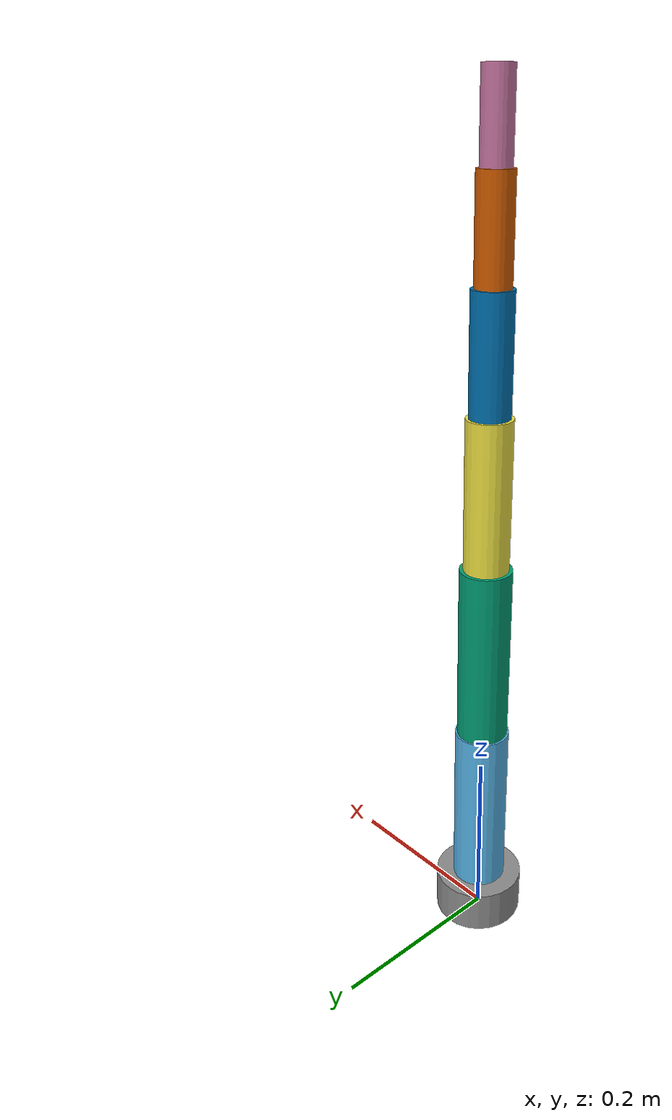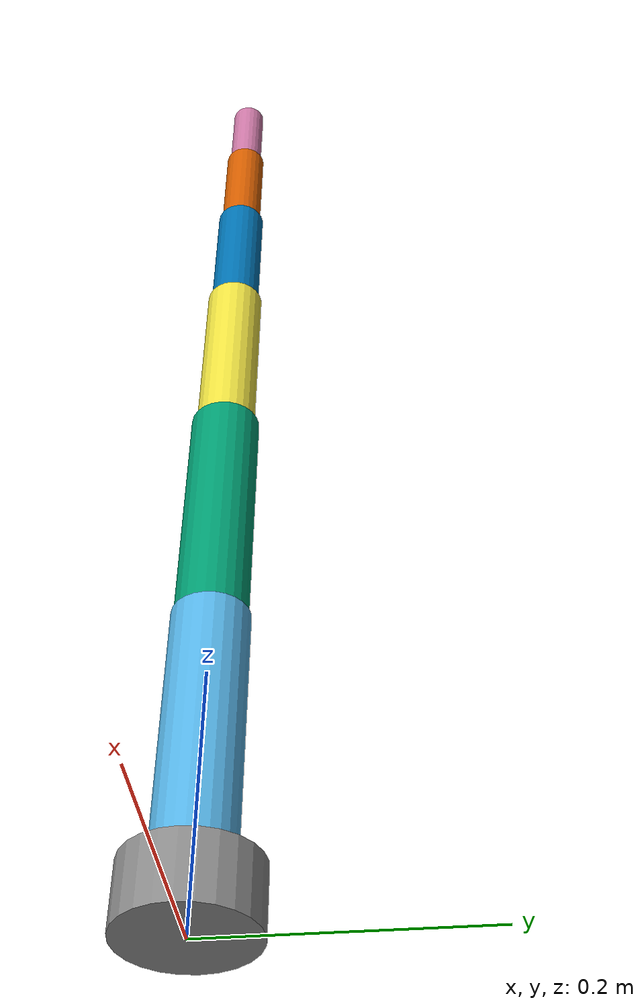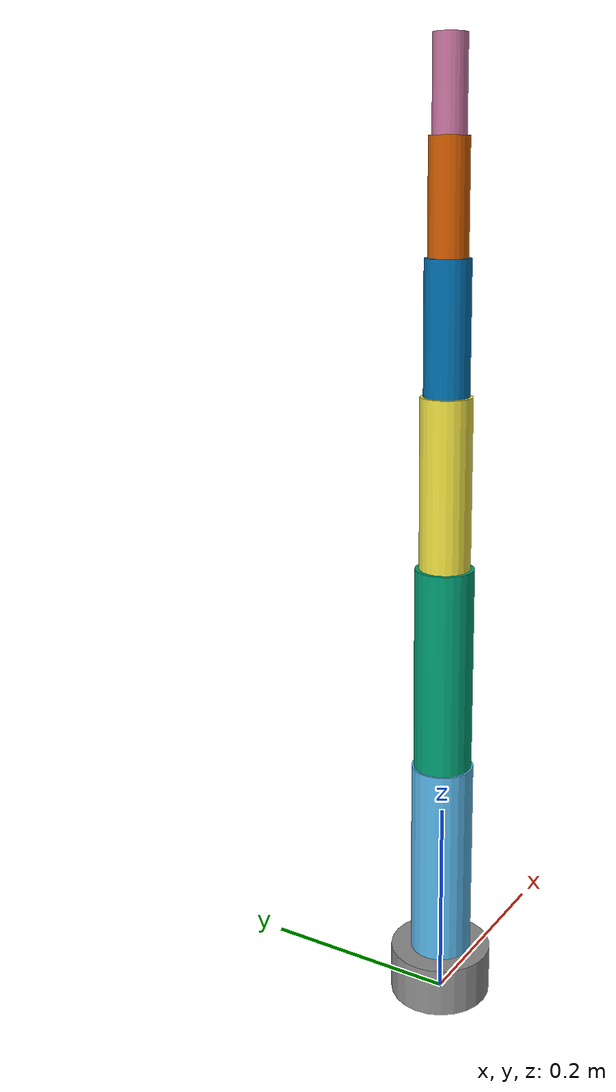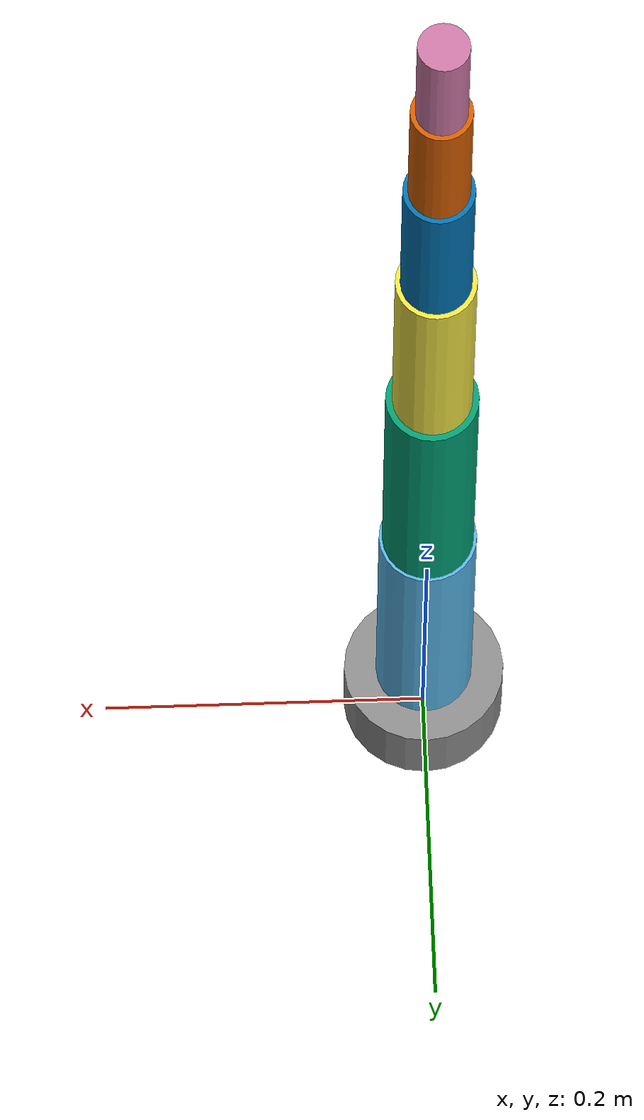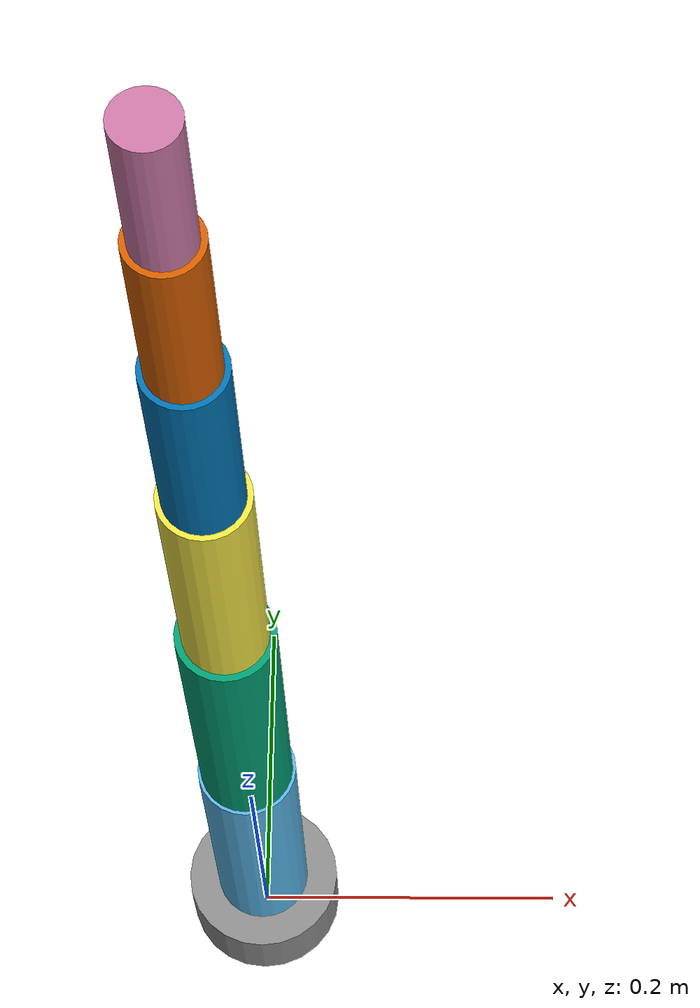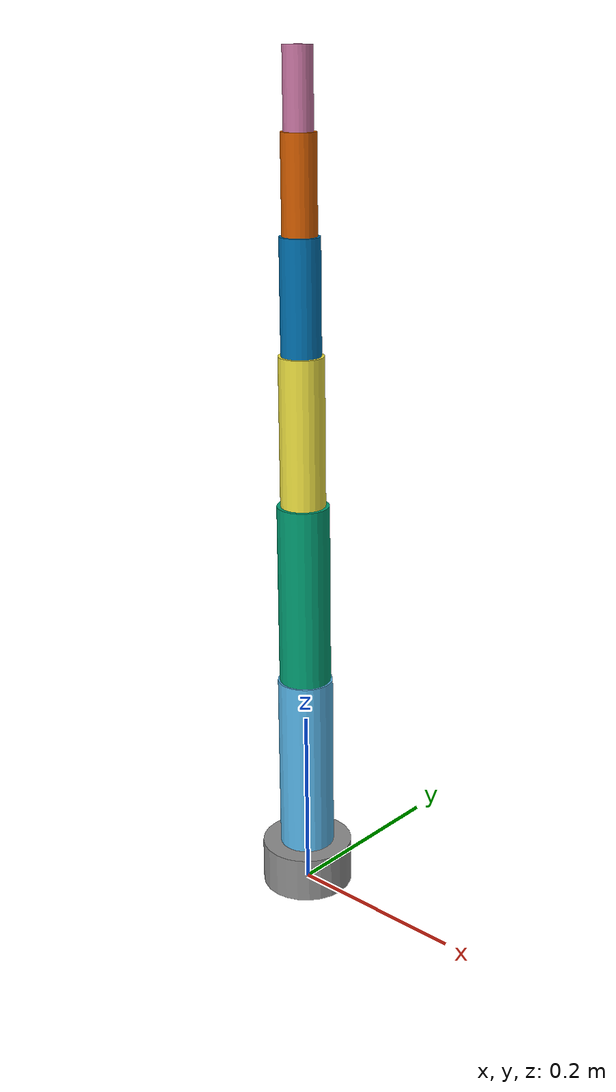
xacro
<?xml version="1.0"?>
<robot name="phase6_arm" xmlns:xacro="http://www.ros.org/wiki/xacro">

  <xacro:property name="pi" value="3.1415926535897931"/>

  <link name="base_link">
    <inertial>
      <origin xyz="0 0 0.025" rpy="0 0 0"/>
      <mass value="2.0"/>
      <inertia ixx="0.01" ixy="0" ixz="0" iyy="0.01" iyz="0" izz="0.01"/>
    </inertial>
    <visual>
      <origin xyz="0 0 0.025" rpy="0 0 0"/>
      <geometry>
        <cylinder radius="0.05" length="0.05"/>
      </geometry>
      <material name="base_gray">
        <color rgba="0.55 0.55 0.55 1.0"/>
      </material>
    </visual>
    <collision>
      <origin xyz="0 0 0.025" rpy="0 0 0"/>
      <geometry>
        <cylinder radius="0.05" length="0.05"/>
      </geometry>
    </collision>
  </link>

  <link name="link1">
    <inertial><origin xyz="0 0 0.10" rpy="0 0 0"/><mass value="1.0"/><inertia ixx="0.005" ixy="0" ixz="0" iyy="0.005" iyz="0" izz="0.002"/></inertial>
    <visual><origin xyz="0 0 0.10" rpy="0 0 0"/><geometry><cylinder radius="0.03" length="0.20"/></geometry></visual>
    <collision><origin xyz="0 0 0.10" rpy="0 0 0"/><geometry><cylinder radius="0.03" length="0.20"/></geometry></collision>
  </link>
  <joint name="joint1" type="revolute">
    <parent link="base_link"/>
    <child link="link1"/>
    <origin xyz="0 0 0.05" rpy="0 0 0"/>
    <axis xyz="0 0 1"/>
    <limit lower="-${pi}" upper="${pi}" effort="20" velocity="2.0"/>
  </joint>

  <link name="link2">
    <inertial><origin xyz="0 0 0.10" rpy="0 0 0"/><mass value="0.9"/><inertia ixx="0.004" ixy="0" ixz="0" iyy="0.004" iyz="0" izz="0.002"/></inertial>
    <visual><origin xyz="0 0 0.10" rpy="0 0 0"/><geometry><cylinder radius="0.028" length="0.20"/></geometry></visual>
    <collision><origin xyz="0 0 0.10" rpy="0 0 0"/><geometry><cylinder radius="0.028" length="0.20"/></geometry></collision>
  </link>
  <joint name="joint2" type="revolute">
    <parent link="link1"/>
    <child link="link2"/>
    <origin xyz="0 0 0.20" rpy="0 0 0"/>
    <axis xyz="0 1 0"/>
    <limit lower="-2.5" upper="2.5" effort="20" velocity="2.0"/>
  </joint>

  <link name="link3">
    <inertial><origin xyz="0 0 0.08" rpy="0 0 0"/><mass value="0.7"/><inertia ixx="0.003" ixy="0" ixz="0" iyy="0.003" iyz="0" izz="0.001"/></inertial>
    <visual><origin xyz="0 0 0.08" rpy="0 0 0"/><geometry><cylinder radius="0.024" length="0.16"/></geometry></visual>
    <collision><origin xyz="0 0 0.08" rpy="0 0 0"/><geometry><cylinder radius="0.024" length="0.16"/></geometry></collision>
  </link>
  <joint name="joint3" type="revolute">
    <parent link="link2"/>
    <child link="link3"/>
    <origin xyz="0 0 0.20" rpy="0 0 0"/>
    <axis xyz="0 1 0"/>
    <limit lower="-2.5" upper="2.5" effort="15" velocity="2.0"/>
  </joint>

  <link name="link4">
    <inertial><origin xyz="0 0 0.06" rpy="0 0 0"/><mass value="0.5"/><inertia ixx="0.002" ixy="0" ixz="0" iyy="0.002" iyz="0" izz="0.001"/></inertial>
    <visual><origin xyz="0 0 0.06" rpy="0 0 0"/><geometry><cylinder radius="0.021" length="0.12"/></geometry></visual>
    <collision><origin xyz="0 0 0.06" rpy="0 0 0"/><geometry><cylinder radius="0.021" length="0.12"/></geometry></collision>
  </link>
  <joint name="joint4" type="revolute">
    <parent link="link3"/>
    <child link="link4"/>
    <origin xyz="0 0 0.16" rpy="0 0 0"/>
    <axis xyz="1 0 0"/>
    <limit lower="-${pi}" upper="${pi}" effort="10" velocity="2.5"/>
  </joint>

  <link name="link5">
    <inertial><origin xyz="0 0 0.05" rpy="0 0 0"/><mass value="0.4"/><inertia ixx="0.0015" ixy="0" ixz="0" iyy="0.0015" iyz="0" izz="0.0008"/></inertial>
    <visual><origin xyz="0 0 0.05" rpy="0 0 0"/><geometry><cylinder radius="0.018" length="0.10"/></geometry></visual>
    <collision><origin xyz="0 0 0.05" rpy="0 0 0"/><geometry><cylinder radius="0.018" length="0.10"/></geometry></collision>
  </link>
  <joint name="joint5" type="revolute">
    <parent link="link4"/>
    <child link="link5"/>
    <origin xyz="0 0 0.12" rpy="0 0 0"/>
    <axis xyz="0 1 0"/>
    <limit lower="-2.5" upper="2.5" effort="8" velocity="2.5"/>
  </joint>

  <link name="tool0">
    <inertial><origin xyz="0 0 0.04" rpy="0 0 0"/><mass value="0.25"/><inertia ixx="0.001" ixy="0" ixz="0" iyy="0.001" iyz="0" izz="0.0005"/></inertial>
    <visual><origin xyz="0 0 0.04" rpy="0 0 0"/><geometry><cylinder radius="0.015" length="0.08"/></geometry></visual>
    <collision><origin xyz="0 0 0.04" rpy="0 0 0"/><geometry><cylinder radius="0.015" length="0.08"/></geometry></collision>
  </link>
  <joint name="joint6" type="revolute">
    <parent link="link5"/>
    <child link="tool0"/>
    <origin xyz="0 0 0.10" rpy="0 0 0"/>
    <axis xyz="1 0 0"/>
    <limit lower="-${pi}" upper="${pi}" effort="6" velocity="3.0"/>
  </joint>

  <ros2_control name="GazeboSystem" type="system">
    <hardware>
      <plugin>gazebo_ros2_control/GazeboSystem</plugin>
    </hardware>
    <joint name="joint1"><command_interface name="position"/><state_interface name="position"/><state_interface name="velocity"/></joint>
    <joint name="joint2"><command_interface name="position"/><state_interface name="position"/><state_interface name="velocity"/></joint>
    <joint name="joint3"><command_interface name="position"/><state_interface name="position"/><state_interface name="velocity"/></joint>
    <joint name="joint4"><command_interface name="position"/><state_interface name="position"/><state_interface name="velocity"/></joint>
    <joint name="joint5"><command_interface name="position"/><state_interface name="position"/><state_interface name="velocity"/></joint>
    <joint name="joint6"><command_interface name="position"/><state_interface name="position"/><state_interface name="velocity"/></joint>
  </ros2_control>

  <gazebo>
    <plugin name="gazebo_ros2_control" filename="libgazebo_ros2_control.so">
      <parameters>$(find tactile_sim)/config/ros2_controllers.yaml</parameters>
    </plugin>
  </gazebo>

</robot>
